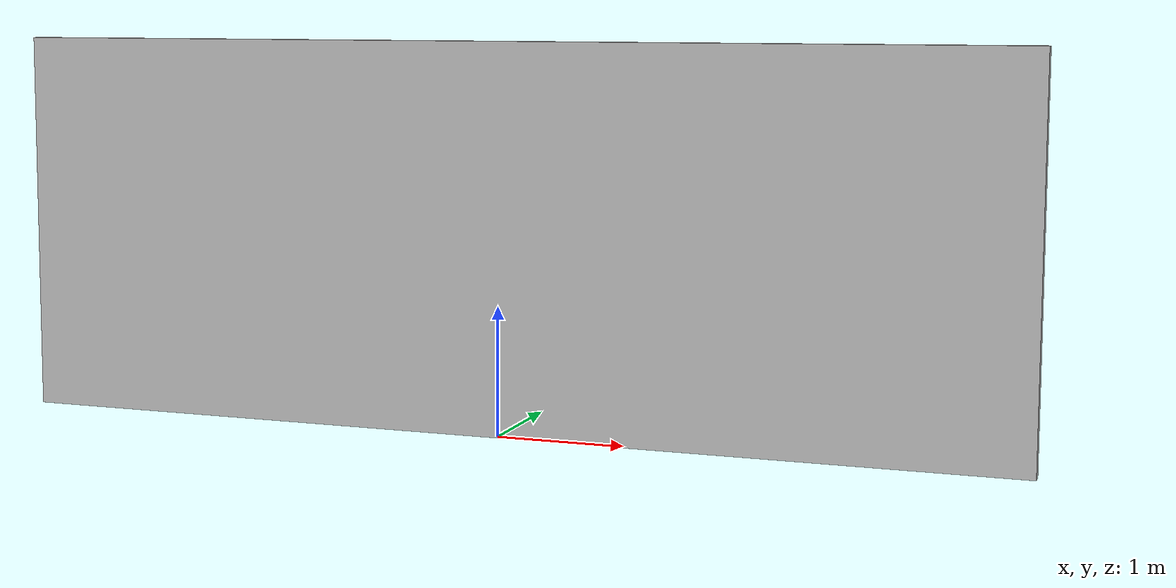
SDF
<?xml version="1.0"?>
<sdf version="1.6">
  <model name="nav_boundary_wall">
    <static>true</static>

    <link name="link">
      <pose>0 0 1.5 0 0 0</pose>

      <collision name="collision">
        <geometry>
          <box>
            <size>8.0 0.10 3.0</size>
          </box>
        </geometry>
      </collision>

      <visual name="visual">
        <geometry>
          <box>
            <size>8.0 0.10 3.0</size>
          </box>
        </geometry>
      </visual>
    </link>
  </model>
</sdf>
